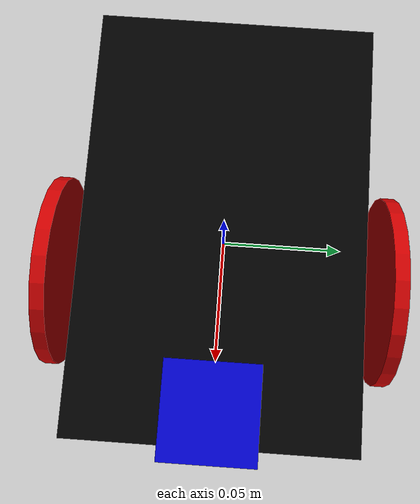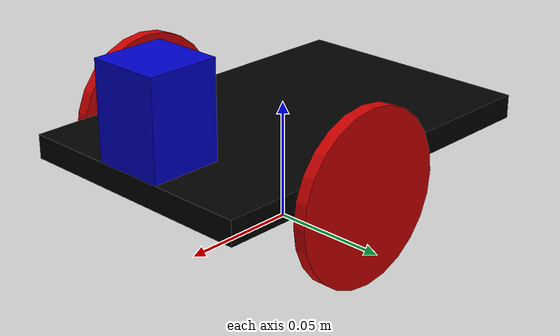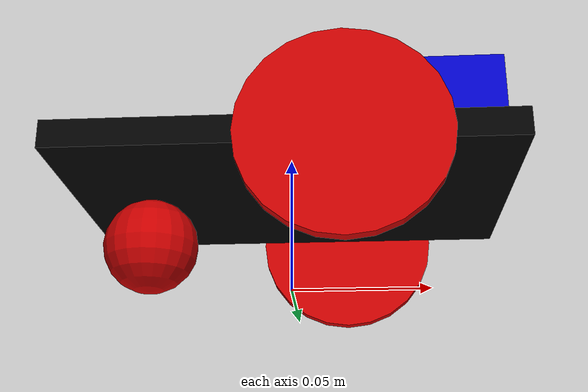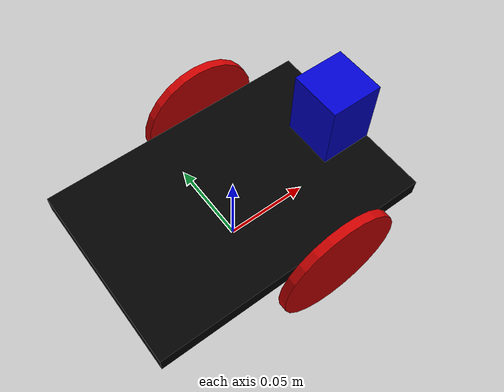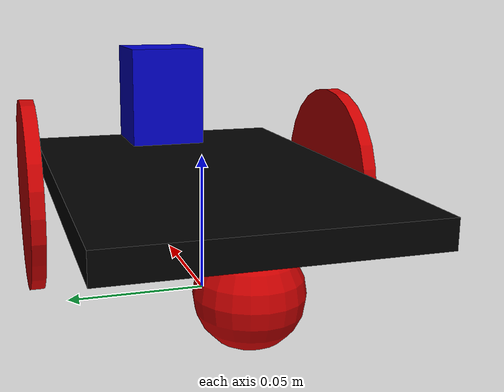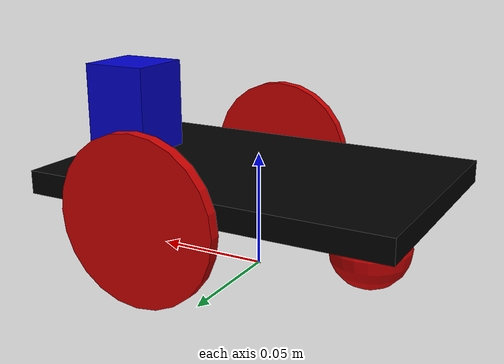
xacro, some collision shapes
<?xml version="1.0"?>
<robot xmlns:xacro="http://www.ros.org/wiki/xacro" name="mybot">

  <xacro:include filename="$(find my_truckie)/urdf/mybot.plugins.xacro" />

  <xacro:property name="base_width" value="0.106"/>
  <xacro:property name="base_len" value="0.16"/>
  <xacro:property name="wheel_radius" value="0.035"/>
  <xacro:property name="base_wheel_gap" value="0.007"/>
  <xacro:property name="wheel_separation" value="0.12"/>
  <xacro:property name="wheel_joint_offset" value="0.02"/>

  <xacro:property name="caster_wheel_radius" value="${wheel_radius/2}"/>
  <xacro:property name="caster_wheel_mass" value="0.001"/>
  <xacro:property name="caster_wheel_joint_offset" value="-0.052"/>

  <xacro:property name="laser_size_x" value="0.03"/>
  <xacro:property name="laser_size_y" value="0.03"/>
  <xacro:property name="laser_size_z" value="0.04"/>
  <xacro:property name="laser_origin_x" value="0.065"/>
  <xacro:property name="laser_origin_y" value="0"/>
  <xacro:property name="laser_origin_z" value="0.025"/>

  <material name="blue">
    <color rgba="0 0 0.8 1"/>
  </material>
  <material name="black">
    <color rgba="0 0 0 1"/>
  </material>
  <material name="white">
    <color rgba="1 1 1 1"/>
  </material>
  <material name="red">
    <color rgba="0.8 0.0 0.0 1.0"/>
  </material>

  <xacro:macro name="default_inertial" params="mass">
    <inertial>
      <mass value="${mass}"/>
      <inertia ixx="1.0" ixy="0.0" ixz="0.0" iyy="1.0" iyz="0.0" izz="1.0"/>
    </inertial>
  </xacro:macro>

  <link name="base_footprint">
    <inertial>
      <mass value="0.0001" />
      <origin xyz="0 0 0" />
      <inertia ixx="0.0001" ixy="0.0" ixz="0.0"
          iyy="0.0001" iyz="0.0"
          izz="0.0001" />
    </inertial>
    <visual>
        <origin xyz="0 0 0" rpy="0 0 0" />
        <geometry>
            <box size="0.001 0.001 0.001" />
        </geometry>
    </visual>
  </link>

  <link name="base_link">
    <visual>
      <geometry>
        <box size="${base_len} ${base_width} 0.01"/>
      </geometry>
      <material name="black"/>
    </visual>
    <collision>
      <geometry>
        <box size="${base_len} ${base_width} 0.01"/>
      </geometry>
    </collision>
    <xacro:default_inertial mass="0.2"/>
  </link>

  <joint name="base_footprint_joint" type="fixed">
    <origin xyz="0 0 ${wheel_radius + 0.005}" rpy="0 0 0" />
    <parent link="base_footprint"/>
    <child link="base_link" />
  </joint>

  <xacro:macro name="wheel" params="prefix reflect">
    <link name="${prefix}_wheel">
      <visual>
        <origin xyz="0 0 0" rpy="${pi/2} 0 0"/>
        <geometry>
          <cylinder radius="${wheel_radius}" length="0.005"/>
        </geometry>
        <material name="red"/>
      </visual>
      <collision>
        <origin xyz="0 0 0" rpy="${pi/2} 0 0"/>
        <geometry>
          <cylinder radius="${wheel_radius}" length="0.005"/>
        </geometry>
      </collision>
      <xacro:default_inertial mass="0.02"/>
    </link>

    <joint name="${prefix}_wheel_joint" type="continuous">
      <axis xyz="0 1 0" rpy="0 0 0" />
      <parent link="base_link"/>
      <child link="${prefix}_wheel"/>
      <origin xyz="${wheel_joint_offset} ${((base_width/2)+base_wheel_gap)*reflect} -0.005" rpy="0 0 0"/>
    </joint>
  </xacro:macro>

  <xacro:wheel prefix="left" reflect="1"/>
  <xacro:wheel prefix="right" reflect="-1"/>

  <!--Caster Wheel-->
  <link name="caster_wheel">
    <visual>
      <origin xyz="0 0 0" rpy="0 0 0"/>
      <geometry>
        <sphere radius="${caster_wheel_radius}"/>
      </geometry>
      <material name="red"/>
    </visual>
    <collision>
      <origin xyz="0 0 0" rpy="0 0 0"/>
      <geometry>
        <sphere radius="${caster_wheel_radius}"/>
      </geometry>
    </collision>
    <xacro:default_inertial mass="0.01"/>
  </link>

  <joint name="caster_wheel_joint" type="continuous">
    <axis xyz="0 1 0" rpy="0 0 0" />
    <parent link="base_link"/>
    <child link="caster_wheel"/>
    <origin xyz="${caster_wheel_joint_offset} 0 -${caster_wheel_radius+0.005}" rpy="0 0 0"/>
  </joint>

  <!--Laser Scan-->
  <link name="sensor_laser">
    <visual>
      <geometry>
        <mesh filename="package://my_truckie/meshes/hokuyo.dae"/>
        <!--box size="${laser_size_x} ${laser_size_y} ${laser_size_z}"/-->
      </geometry>
      <material name="blue"/>
    </visual>
    <collision>
      <geometry>
        <box size="${laser_size_x} ${laser_size_y} ${laser_size_z}"/>
      </geometry>
    </collision>
    <xacro:default_inertial mass="0.02"/>
  </link>

  <joint name="sensor_laser_joint" type="fixed">
    <origin xyz="${laser_origin_x} ${laser_origin_y} ${laser_origin_z}" rpy="0 0 0" />
    <parent link="base_link"/>
    <child link="sensor_laser" />
  </joint>

</robot>
